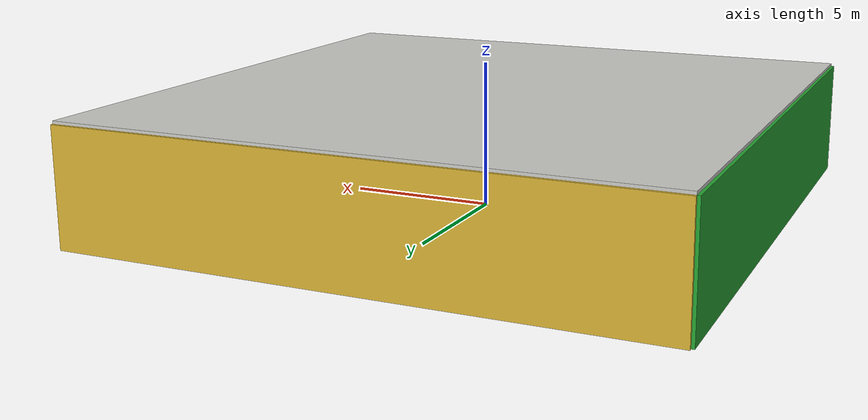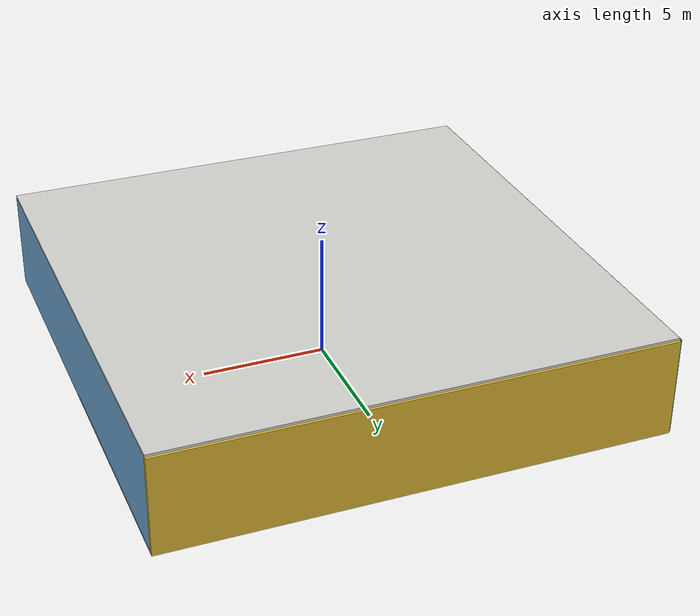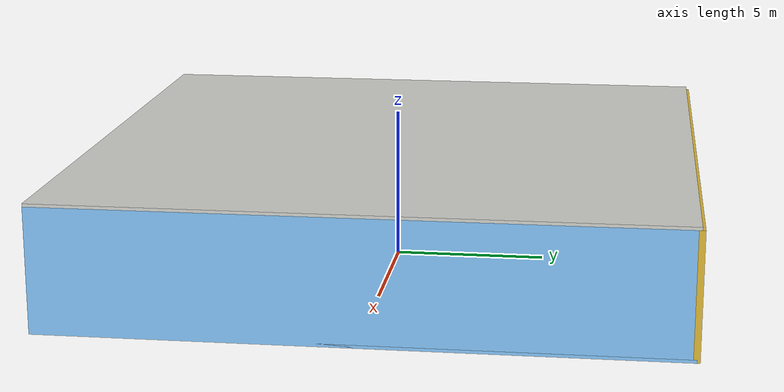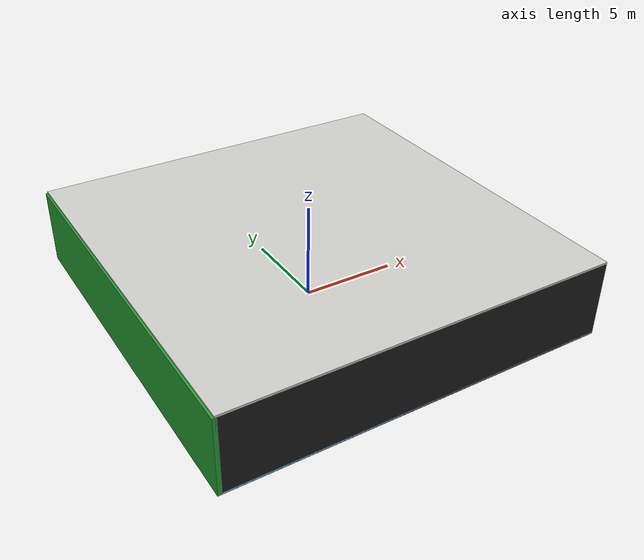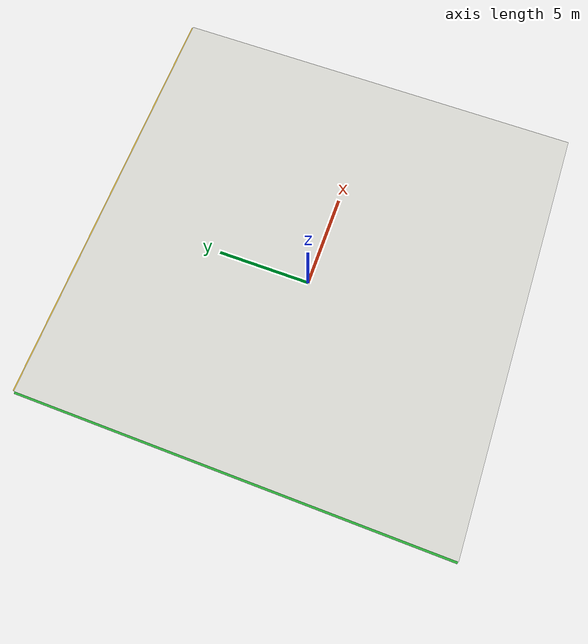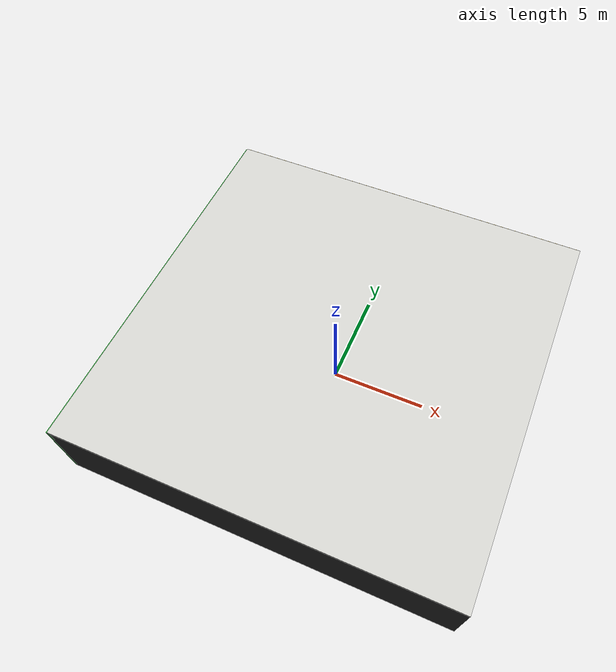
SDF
<sdf version="1.4">
 <world name="default">
  <physics type="ode">
   <max_step_size>0.001</max_step_size>
   <real_time_factor>1</real_time_factor>
   <real_time_update_rate>1000</real_time_update_rate>
   <gravity>0 0 -9.8</gravity>
  </physics>
  <scene><ambient>0.4 0.4 0.4 1</ambient><background>0.7 0.7 0.7 1</background><shadows>1</shadows></scene>
  <model name="Surrounding">
   <static>1</static>
   <link name="Ceiling">
    <collision name="Ceiling_Collision"><geometry><box><size>20 20 0.1</size></box></geometry></collision>
    <visual name="Ceiling_Visual">
     <geometry><box><size>20 20 0.1</size></box></geometry>
     <material>
      <script><uri>file://media/materials/scripts/gazebo.material</uri><name>Gazebo/CeilingTiled</name></script>
     </material>
    </visual>
    <pose>0 0 4.05 0 0 0</pose>
   </link>
   <link name="Wall_South">
    <collision name="Wall_South_Collision">
     <geometry><box><size>20 0 4</size></box></geometry>
     <pose>0 0 2 0 -0 0</pose>
    </collision>
    <visual name="Wall_South_Visual">
     <pose>0 0 2 0 -0 0</pose>
     <geometry><box><size>20 0 4</size></box></geometry>
     <material>
      <script><uri>file://media/materials/scripts/gazebo.material</uri><name>Gazebo/Black</name></script>
     </material>
    </visual>
    <velocity_decay><linear>0</linear><angular>0</angular></velocity_decay>
    <pose>0 -10 0 0 -0 0</pose>
   </link>
   <link name="Wall_East">
    <collision name="Wall_21_Collision">
     <geometry><box><size>20 0 4</size></box></geometry>
     <pose>0 0 2 0 -0 0</pose>
    </collision>
    <visual name="Wall_21_Visual">
     <pose>0 0 2 0 -0 0</pose>
     <geometry><box><size>20 0 4</size></box></geometry>
     <material>
      <script><uri>file://media/materials/scripts/gazebo.material</uri><name>Gazebo/SkyBlue</name></script>
     </material>
    </visual>
    <velocity_decay><linear>0</linear><angular>0</angular></velocity_decay>
    <pose>10 0 0 0 -0 1.5708</pose>
   </link>
   <link name="Wall_North">
    <collision name="Wall_22_Collision">
     <geometry><box><size>20 0.2 4</size></box></geometry>
     <pose>0 0 2 0 -0 0</pose>
    </collision>
    <visual name="Wall_22_Visual">
     <pose>0 0 2 0 -0 0</pose>
     <geometry><box><size>20 0.2 4</size></box></geometry>
     <material>
      <script><uri>file://media/materials/scripts/gazebo.material</uri><name>Gazebo/Gold</name></script>
     </material>
    </visual>
    <velocity_decay><linear>0</linear><angular>0</angular></velocity_decay>
    <pose>0 10 0 0 -0 0</pose>
   </link>
   <link name="Wall_West">
    <collision name="Wall_23_Collision">
     <geometry><box><size>20 0.2 4</size></box></geometry>
     <pose>0 0 2 0 -0 0</pose>
    </collision>
    <visual name="Wall_23_Visual">
     <pose>0 0 2 0 -0 0</pose>
     <geometry><box><size>20 0.2 4</size></box></geometry>
     <material>
      <script><uri>file://media/materials/scripts/gazebo.material</uri><name>Gazebo/GreenGlow</name></script>
     </material>
    </visual>
    <velocity_decay><linear>0</linear><angular>0</angular></velocity_decay>
    <pose>-10 0 0 0 0 -1.5708</pose>
   </link>
   <link name="Ground_link">
    <collision name="collision">
     <pose>0 0 .05 0 -0 0</pose>
     <geometry><box><size>20 20 0.1</size></box></geometry>
    </collision>
    <visual name="visual">
     <pose>0 0 .05 0 -0 0</pose>
     <geometry><box><size>20 20 0.1</size></box></geometry>
     <material>
      <script><uri>file://media/materials/scripts/gazebo.material</uri><name>Gazebo/SkyBlue</name></script>
     </material>
    </visual>
   </link>
   <static>1</static>
  </model>
  <spherical_coordinates>
   <surface_model>EARTH_WGS84</surface_model>
   <latitude_deg>0</latitude_deg>
   <longitude_deg>0</longitude_deg>
   <elevation>0</elevation>
   <heading_deg>0</heading_deg>
  </spherical_coordinates>
  <light name="lightball_0" type="diffuse">
   <diffuse>0.8 0.8 0.8 1</diffuse>
   <specular>0.2 0.2 0.2 1</specular>
   <attenuation>
    <range>100</range>
    <constant>0.7</constant>
    <linear>0.01</linear>
    <quadratic>0.001</quadratic>
   </attenuation>
   <direction>-0.5 0.1 -0.9</direction>
   <pose>-9.69614037004 -2.62221599414 3.23476416589 0 0 0</pose>
  </light>
  <light name="lightball_1" type="diffuse">
   <diffuse>0.8 0.8 0.8 1</diffuse>
   <specular>0.2 0.2 0.2 1</specular>
   <attenuation>
    <range>100</range>
    <constant>0.7</constant>
    <linear>0.01</linear>
    <quadratic>0.001</quadratic>
   </attenuation>
   <direction>-0.5 0.1 -0.9</direction>
   <pose>7.2117803059 -7.84931722214 3.4706198756 0 0 0</pose>
  </light>
  <light name="lightball_2" type="diffuse">
   <diffuse>0.8 0.8 0.8 1</diffuse>
   <specular>0.2 0.2 0.2 1</specular>
   <attenuation>
    <range>100</range>
    <constant>0.7</constant>
    <linear>0.01</linear>
    <quadratic>0.001</quadratic>
   </attenuation>
   <direction>-0.5 0.1 -0.9</direction>
   <pose>-0.726621509812 4.65130243433 2.09442305741 0 0 0</pose>
  </light>
  <light name="lightball_3" type="diffuse">
   <diffuse>0.8 0.8 0.8 1</diffuse>
   <specular>0.2 0.2 0.2 1</specular>
   <attenuation>
    <range>100</range>
    <constant>0.7</constant>
    <linear>0.01</linear>
    <quadratic>0.001</quadratic>
   </attenuation>
   <direction>-0.5 0.1 -0.9</direction>
   <pose>-3.09415659179 -8.27504559379 0.542976199352 0 0 0</pose>
  </light>
  <light name="lightball_4" type="diffuse">
   <diffuse>0.8 0.8 0.8 1</diffuse>
   <specular>0.2 0.2 0.2 1</specular>
   <attenuation>
    <range>100</range>
    <constant>0.7</constant>
    <linear>0.01</linear>
    <quadratic>0.001</quadratic>
   </attenuation>
   <direction>-0.5 0.1 -0.9</direction>
   <pose>-8.88107923796 -4.04682461752 1.14858536 0 0 0</pose>
  </light>
  <light name="lightball_5" type="diffuse">
   <diffuse>0.8 0.8 0.8 1</diffuse>
   <specular>0.2 0.2 0.2 1</specular>
   <attenuation>
    <range>100</range>
    <constant>0.7</constant>
    <linear>0.01</linear>
    <quadratic>0.001</quadratic>
   </attenuation>
   <direction>-0.5 0.1 -0.9</direction>
   <pose>-6.87672974382 7.02903586681 3.26842678809 0 0 0</pose>
  </light>
  <light name="lightball_6" type="diffuse">
   <diffuse>0.8 0.8 0.8 1</diffuse>
   <specular>0.2 0.2 0.2 1</specular>
   <attenuation>
    <range>100</range>
    <constant>0.7</constant>
    <linear>0.01</linear>
    <quadratic>0.001</quadratic>
   </attenuation>
   <direction>-0.5 0.1 -0.9</direction>
   <pose>-9.51896352965 9.97222726413 0.657531450213 0 0 0</pose>
  </light>
  <include><uri>model://table</uri><pose>-7.73859513709 -8.69921624231 0 0 0 2.04552557615</pose></include>
  <include><uri>model://cabinet</uri><pose>-1.41903656591 -6.75640548739 0 0 0 0.362418917591</pose></include>
  <include><uri>model://cabinet</uri><pose>2.08742452196 -7.95503304648 0 0 0 0.787620817467</pose></include>
  <include><uri>model://table</uri><pose>3.71911778847 1.09088595073 0 0 0 0.178894133989</pose></include>
  <include>
   <uri>model://textured_shapes</uri>
   <pose>5.46739620457 5.65341425914 0 0 0 0.368937797971</pose>
  </include>
  <include><uri>model://cabinet</uri><pose>5.21776800905 7.72594938417 0 0 0 1.53521878023</pose></include>
 </world>
</sdf>

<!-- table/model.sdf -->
<sdf version="1.5">
  <model name="table">
    <static>true</static>
    <link name="link">
      <collision name="surface">
        <pose>0 0 1.0 0 0 0</pose>
        <geometry>
          <box>
            <size>1.5 0.8 0.03</size>
          </box>
        </geometry>
        <surface>
          <friction>
            <ode>
              <mu>0.6</mu>
              <mu2>0.6</mu2>
            </ode>
          </friction>
        </surface>
      </collision>
      <visual name="visual1">
        <pose>0 0 1.0 0 0 0</pose>
        <geometry>
          <box>
            <size>1.5 0.8 0.03</size>
          </box>
        </geometry>
        <material>
          <script>
            <uri>model://media/materials/scripts/gazebo.material</uri>
            <name>Gazebo/Wood</name>
          </script>
        </material>
      </visual>
      <collision name="front_left_leg">
        <pose>0.68 0.38 0.5 0 0 0</pose>
        <geometry>
          <cylinder>
            <radius>0.02</radius>
            <length>1.0</length>
          </cylinder>
        </geometry>
      </collision>
      <visual name="front_left_leg">
        <pose>0.68 0.38 0.5 0 0 0</pose>
        <geometry>
          <cylinder>
            <radius>0.02</radius>
            <length>1.0</length>
          </cylinder>
        </geometry>
        <material>
          <script>
            <uri>model://media/materials/scripts/gazebo.material</uri>
            <name>Gazebo/Grey</name>
          </script>
        </material>
      </visual>
      <collision name="front_right_leg">
        <pose>0.68 -0.38 0.5 0 0 0</pose>
        <geometry>
          <cylinder>
            <radius>0.02</radius>
            <length>1.0</length>
          </cylinder>
        </geometry>
      </collision>
      <visual name="front_right_leg">
        <pose>0.68 -0.38 0.5 0 0 0</pose>
        <geometry>
          <cylinder>
            <radius>0.02</radius>
            <length>1.0</length>
          </cylinder>
        </geometry>
        <material>
          <script>
            <uri>model://media/materials/scripts/gazebo.material</uri>
            <name>Gazebo/Grey</name>
          </script>
        </material>
      </visual>
      <collision name="back_right_leg">
        <pose>-0.68 -0.38 0.5 0 0 0</pose>
        <geometry>
          <cylinder>
            <radius>0.02</radius>
            <length>1.0</length>
          </cylinder>
        </geometry>
      </collision>
      <visual name="back_right_leg">
        <pose>-0.68 -0.38 0.5 0 0 0</pose>
        <geometry>
          <cylinder>
            <radius>0.02</radius>
            <length>1.0</length>
          </cylinder>
        </geometry>
        <material>
          <script>
            <uri>model://media/materials/scripts/gazebo.material</uri>
            <name>Gazebo/Grey</name>
          </script>
        </material>
      </visual>
      <collision name="back_left_leg">
        <pose>-0.68 0.38 0.5 0 0 0</pose>
        <geometry>
          <cylinder>
            <radius>0.02</radius>
            <length>1.0</length>
          </cylinder>
        </geometry>
      </collision>
      <visual name="back_left_leg">
        <pose>-0.68 0.38 0.5 0 0 0</pose>
        <geometry>
          <cylinder>
            <radius>0.02</radius>
            <length>1.0</length>
          </cylinder>
        </geometry>
        <material>
          <script>
            <uri>model://media/materials/scripts/gazebo.material</uri>
            <name>Gazebo/Grey</name>
          </script>
        </material>
      </visual>
    </link>
  </model>
</sdf>

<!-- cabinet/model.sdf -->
<sdf version="1.5">
  <model name="cabinet">
    <static>true</static>
    <link name="cabinet_bottom_plate">
      <inertial>
        <pose>0 0 -1 0 0 0</pose>
        <inertia>
          <ixx>2.050000</ixx>
          <ixy>0</ixy>
          <ixz>0</ixz>
          <iyy>2.050000</iyy>
          <iyz>0</iyz>
          <izz>2.050000</izz>
        </inertia>
        <mass>25.000000</mass>
      </inertial>
      <collision name="cabinet_bottom_plate_geom">
        <pose>0 0 0.010000 0 0 0</pose>
        <geometry>
          <box>
            <size>0.450000 0.450000 0.020000</size>
          </box>
        </geometry>
      </collision>
      <visual name="cabinet_bottom_plate_geom_visual">
        <pose>0 0 0.010000 0 0 0</pose>
        <geometry>
          <box>
            <size>0.450000 0.450000 0.020000</size>
          </box>
        </geometry>
        <material>
          <script>
            <uri>model://media/materials/scripts/gazebo.material</uri>
            <name>Gazebo/Wood</name>
          </script>
        </material>
      </visual>
      <collision name="cabinet_bottom_plate_geom_cabinet_back_plate">
        <pose>0.235000 0 0.510000 0 0 0</pose>
        <geometry>
          <box>
            <size>0.020000 0.450000 1.020000</size>
          </box>
        </geometry>
      </collision>
      <visual name="cabinet_bottom_plate_geom_cabinet_back_plate_visual">
        <pose>0.235000 0 0.510000 0 0 0</pose>
        <geometry>
          <box>
            <size>0.020000 0.450000 1.020000</size>
          </box>
        </geometry>
        <material>
          <script>
            <uri>model://media/materials/scripts/gazebo.material</uri>
            <name>Gazebo/Wood</name>
          </script>
        </material>
      </visual>
      <collision name="cabinet_bottom_plate_geom_cabinet_left_plate">
        <pose>0 0.235000 0.510000 0 0 0</pose>
        <geometry>
          <box>
            <size>0.450000 0.020000 1.020000</size>
          </box>
        </geometry>
      </collision>
      <visual name="cabinet_bottom_plate_geom_cabinet_left_plate_visual">
        <pose>0 0.235000 0.510000 0 0 0</pose>
        <geometry>
          <box>
            <size>0.450000 0.020000 1.020000</size>
          </box>
        </geometry>
        <material>
          <script>
            <uri>model://media/materials/scripts/gazebo.material</uri>
            <name>Gazebo/Wood</name>
          </script>
        </material>
      </visual>
      <collision name="cabinet_bottom_plate_geom_cabinet_middle_plate">
        <pose>0 0 0.510000 0 0 0</pose>
        <geometry>
          <box>
            <size>0.450000 0.450000 0.020000</size>
          </box>
        </geometry>
      </collision>
      <visual name="cabinet_bottom_plate_geom_cabinet_middle_plate_visual">
        <pose>0 0 0.510000 0 0 0</pose>
        <geometry>
          <box>
            <size>0.450000 0.450000 0.020000</size>
          </box>
        </geometry>
        <material>
          <script>
            <uri>model://media/materials/scripts/gazebo.material</uri>
            <name>Gazebo/Wood</name>
          </script>
        </material>
      </visual>
      <collision name="cabinet_bottom_plate_geom_cabinet_right_plate">
        <pose>0 -0.235000 0.510000 0 0 0</pose>
        <geometry>
          <box>
            <size>0.450000 0.020000 1.020000</size>
          </box>
        </geometry>
      </collision>
      <visual name="cabinet_bottom_plate_geom_cabinet_right_plate_visual">
        <pose>0 -0.235000 0.510000 0 0 0</pose>
        <geometry>
          <box>
            <size>0.450000 0.020000 1.020000</size>
          </box>
        </geometry>
        <material>
          <script>
            <uri>model://media/materials/scripts/gazebo.material</uri>
            <name>Gazebo/Wood</name>
          </script>
        </material>
      </visual>
      <collision name="cabinet_bottom_plate_geom_cabinet_top_plate">
        <pose>0 0 1.010000 0 0 0</pose>
        <geometry>
          <box>
            <size>0.450000 0.450000 0.020000</size>
          </box>
        </geometry>
      </collision>
      <visual name="cabinet_bottom_plate_geom_cabinet_top_plate_visual">
        <pose>0 0 1.010000 0 0 0</pose>
        <geometry>
          <box>
            <size>0.450000 0.450000 0.020000</size>
          </box>
        </geometry>
        <material>
          <script>
            <uri>model://media/materials/scripts/gazebo.material</uri>
            <name>Gazebo/Wood</name>
          </script>
        </material>
      </visual>
    </link>
  </model>
</sdf>

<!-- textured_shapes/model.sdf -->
<sdf version="1.6">
  <model name="textured_shapes">
    <pose>0 0 0.5 0 0 0</pose>
    <link name="box">
      <pose>0 -1.5 0 0 0 0</pose>
      <collision name="collision">
        <geometry>
          <box>
            <size>1 1 1</size>
          </box>
        </geometry>
      </collision>
      <visual name="visual">
        <geometry>
          <box>
            <size>1 1 1</size>
          </box>
        </geometry>
        <material>
          <script>
            <uri>model://../model_source/models/textured_shapes/materials/scripts</uri>
            <uri>model://../model_source/models/textured_shapes/materials/textures</uri>
            <name>TexturedShape/Squares</name>
          </script>
        </material>
      </visual>
    </link>
    <link name="sphere">
      <collision name="collision">
        <geometry>
          <sphere>
            <radius>0.5</radius>
          </sphere>
        </geometry>
      </collision>
      <visual name="visual">
        <geometry>
          <sphere>
            <radius>0.5</radius>
          </sphere>
        </geometry>
        <material>
          <script>
            <uri>model://../model_source/models/textured_shapes/materials/scripts</uri>
            <uri>model://../model_source/models/textured_shapes/materials/textures</uri>
            <name>TexturedShape/Squares</name>
          </script>
        </material>
      </visual>
    </link>
    <link name="cylinder">
      <pose>0 1.5 0 0 0 0</pose>
      <collision name="collision">
        <geometry>
          <cylinder>
            <radius>0.5</radius>
            <length>1</length>
          </cylinder>
        </geometry>
      </collision>
      <visual name="visual">
        <geometry>
          <cylinder>
            <radius>0.5</radius>
            <length>1</length>
          </cylinder>
        </geometry>
        <material>
          <script>
            <uri>model://../model_source/models/textured_shapes/materials/scripts</uri>
            <uri>model://../model_source/models/textured_shapes/materials/textures</uri>
            <name>TexturedShape/Squares</name>
          </script>
        </material>
      </visual>
    </link>
  </model>
</sdf>
